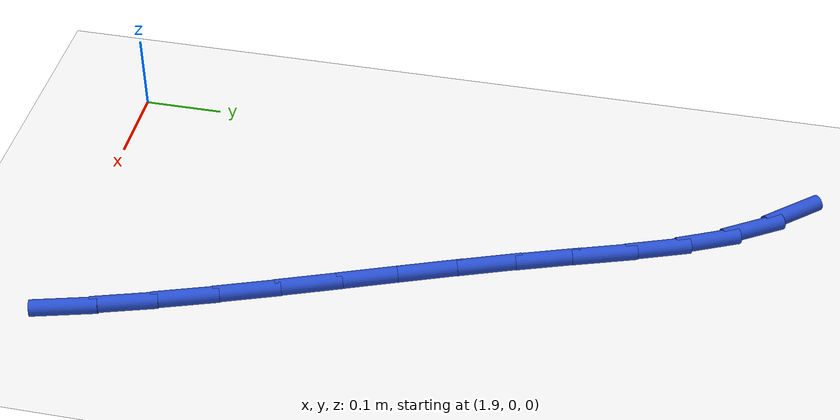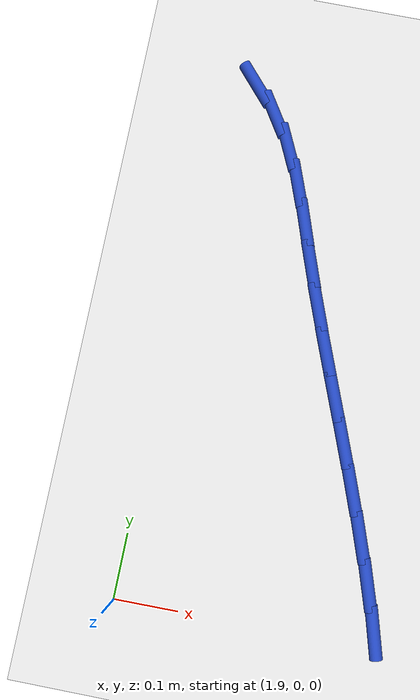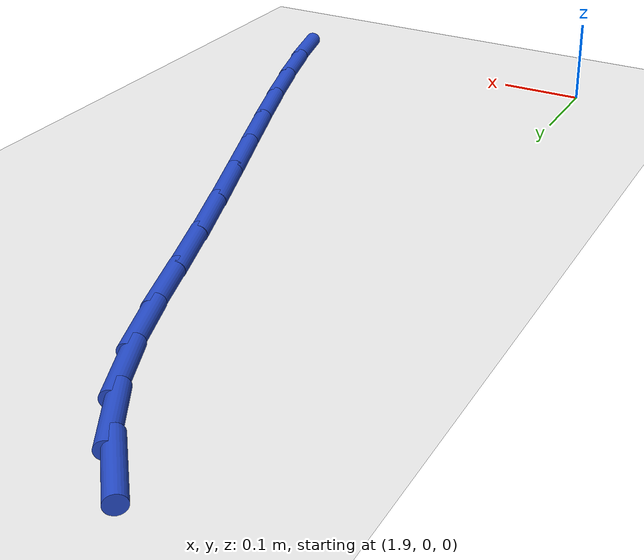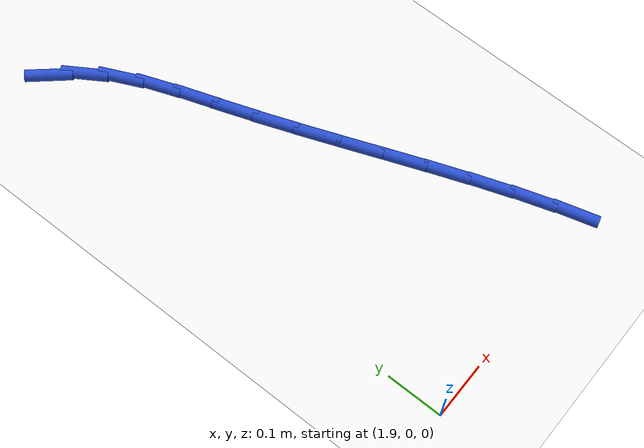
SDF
<sdf version="1.6">
 <world name="default">
  <model name="ground_plane">
   <static>1</static>
   <link name="link">
    <collision name="collision">
     <geometry><plane><normal>0 0 1</normal><size>100 100</size></plane></geometry>
     <surface><friction><ode><mu>100</mu><mu2>50</mu2></ode></friction></surface>
    </collision>
    <visual name="visual">
     <cast_shadows>0</cast_shadows>
     <geometry><plane><normal>0 0 1</normal><size>100 100</size></plane></geometry>
     <material>
      <script><uri>file://media/materials/scripts/gazebo.material</uri><name>Gazebo/WhiteGlow</name></script>
     </material>
    </visual>
   </link>
  </model>
  <model name="line">
   <link name="link_41">
    <pose>1.95905079726874 0.8532667579686639 0.01 0 1.57 -0.8562467923464374</pose>
    <collision name="collision">
     <geometry><cylinder><radius>0.01</radius><length>0.08</length></cylinder></geometry>
    </collision>
    <visual name="visual">
     <material>
      <script><name>Gazebo/Blue</name><uri>file://media/materials/scripts/gazebo.material</uri></script>
     </material>
     <geometry><cylinder><radius>0.01</radius><length>0.08</length></cylinder></geometry>
    </visual>
   </link>
   <link name="link_42">
    <pose>1.998120742030586 0.808227823949041 0.01 0 1.57 -1.0103909799777253</pose>
    <collision name="collision">
     <geometry><cylinder><radius>0.01</radius><length>0.08</length></cylinder></geometry>
    </collision>
    <visual name="visual">
     <material>
      <script><name>Gazebo/Blue</name><uri>file://media/materials/scripts/gazebo.material</uri></script>
     </material>
     <geometry><cylinder><radius>0.01</radius><length>0.08</length></cylinder></geometry>
    </visual>
   </link>
   <link name="link_43">
    <pose>2.0305046120206898 0.7566212434528343 0.01 0 1.57 -1.1402368091794066</pose>
    <collision name="collision">
     <geometry><cylinder><radius>0.01</radius><length>0.08</length></cylinder></geometry>
    </collision>
    <visual name="visual">
     <material>
      <script><name>Gazebo/Blue</name><uri>file://media/materials/scripts/gazebo.material</uri></script>
     </material>
     <geometry><cylinder><radius>0.01</radius><length>0.08</length></cylinder></geometry>
    </visual>
   </link>
   <link name="link_44">
    <pose>2.057036871468002 0.6988543114563467 0.01 0 1.57 -1.215934699222482</pose>
    <collision name="collision">
     <geometry><cylinder><radius>0.01</radius><length>0.08</length></cylinder></geometry>
    </collision>
    <visual name="visual">
     <material>
      <script><name>Gazebo/Blue</name><uri>file://media/materials/scripts/gazebo.material</uri></script>
     </material>
     <geometry><cylinder><radius>0.01</radius><length>0.08</length></cylinder></geometry>
    </visual>
   </link>
   <link name="link_45">
    <pose>2.08014184200214 0.6365007540292182 0.01 0 1.57 -1.243256828644722</pose>
    <collision name="collision">
     <geometry><cylinder><radius>0.01</radius><length>0.08</length></cylinder></geometry>
    </collision>
    <visual name="visual">
     <material>
      <script><name>Gazebo/Blue</name><uri>file://media/materials/scripts/gazebo.material</uri></script>
     </material>
     <geometry><cylinder><radius>0.01</radius><length>0.08</length></cylinder></geometry>
    </visual>
   </link>
   <link name="link_46">
    <pose>2.10233035935274 0.5711977700633871 0.01 0 1.57 -1.2321939173867553</pose>
    <collision name="collision">
     <geometry><cylinder><radius>0.01</radius><length>0.08</length></cylinder></geometry>
    </collision>
    <visual name="visual">
     <material>
      <script><name>Gazebo/Blue</name><uri>file://media/materials/scripts/gazebo.material</uri></script>
     </material>
     <geometry><cylinder><radius>0.01</radius><length>0.08</length></cylinder></geometry>
    </visual>
   </link>
   <link name="link_47">
    <pose>2.1258334347899273 0.5044589879349439 0.01 0 1.57 -1.215597648587566</pose>
    <collision name="collision">
     <geometry><cylinder><radius>0.01</radius><length>0.08</length></cylinder></geometry>
    </collision>
    <visual name="visual">
     <material>
      <script><name>Gazebo/Blue</name><uri>file://media/materials/scripts/gazebo.material</uri></script>
     </material>
     <geometry><cylinder><radius>0.01</radius><length>0.08</length></cylinder></geometry>
    </visual>
   </link>
   <link name="link_48">
    <pose>2.1508868775235426 0.4369169545439577 0.01 0 1.57 -1.2064070128487083</pose>
    <collision name="collision">
     <geometry><cylinder><radius>0.01</radius><length>0.08</length></cylinder></geometry>
    </collision>
    <visual name="visual">
     <material>
      <script><name>Gazebo/Blue</name><uri>file://media/materials/scripts/gazebo.material</uri></script>
     </material>
     <geometry><cylinder><radius>0.01</radius><length>0.08</length></cylinder></geometry>
    </visual>
   </link>
   <link name="link_49">
    <pose>2.176859982439159 0.36882156395797644 0.01 0 1.57 -1.204250714526459</pose>
    <collision name="collision">
     <geometry><cylinder><radius>0.01</radius><length>0.08</length></cylinder></geometry>
    </collision>
    <visual name="visual">
     <material>
      <script><name>Gazebo/Blue</name><uri>file://media/materials/scripts/gazebo.material</uri></script>
     </material>
     <geometry><cylinder><radius>0.01</radius><length>0.08</length></cylinder></geometry>
    </visual>
   </link>
   <link name="link_50">
    <pose>2.2031185175848473 0.30042115279267345 0.01 0 1.57 -1.2089770174197343</pose>
    <collision name="collision">
     <geometry><cylinder><radius>0.01</radius><length>0.08</length></cylinder></geometry>
    </collision>
    <visual name="visual">
     <material>
      <script><name>Gazebo/Blue</name><uri>file://media/materials/scripts/gazebo.material</uri></script>
     </material>
     <geometry><cylinder><radius>0.01</radius><length>0.08</length></cylinder></geometry>
    </visual>
   </link>
   <link name="link_51">
    <pose>2.229028251008681 0.23196405766372125 0.01 0 1.57 -1.220694625832661</pose>
    <collision name="collision">
     <geometry><cylinder><radius>0.01</radius><length>0.08</length></cylinder></geometry>
    </collision>
    <visual name="visual">
     <material>
      <script><name>Gazebo/Blue</name><uri>file://media/materials/scripts/gazebo.material</uri></script>
     </material>
     <geometry><cylinder><radius>0.01</radius><length>0.08</length></cylinder></geometry>
    </visual>
   </link>
   <link name="link_52">
    <pose>2.2539549507587306 0.16369861518679282 0.01 0 1.57 -1.239773635611224</pose>
    <collision name="collision">
     <geometry><cylinder><radius>0.01</radius><length>0.08</length></cylinder></geometry>
    </collision>
    <visual name="visual">
     <material>
      <script><name>Gazebo/Blue</name><uri>file://media/materials/scripts/gazebo.material</uri></script>
     </material>
     <geometry><cylinder><radius>0.01</radius><length>0.08</length></cylinder></geometry>
    </visual>
   </link>
   <link name="link_53">
    <pose>2.277264384883069 0.0958731619775612 0.01 0 1.57 -1.2668590084042601</pose>
    <collision name="collision">
     <geometry><cylinder><radius>0.01</radius><length>0.08</length></cylinder></geometry>
    </collision>
    <visual name="visual">
     <material>
      <script><name>Gazebo/Blue</name><uri>file://media/materials/scripts/gazebo.material</uri></script>
     </material>
     <geometry><cylinder><radius>0.01</radius><length>0.08</length></cylinder></geometry>
    </visual>
   </link>
   <link name="link_54">
    <pose>2.2983223214297674 0.028736034651699098 0.01 0 1.57 -1.3028925009323327</pose>
    <collision name="collision">
     <geometry><cylinder><radius>0.01</radius><length>0.08</length></cylinder></geometry>
    </collision>
    <visual name="visual">
     <material>
      <script><name>Gazebo/Blue</name><uri>file://media/materials/scripts/gazebo.material</uri></script>
     </material>
     <geometry><cylinder><radius>0.01</radius><length>0.08</length></cylinder></geometry>
    </visual>
   </link>
  </model>
 </world>
</sdf>
